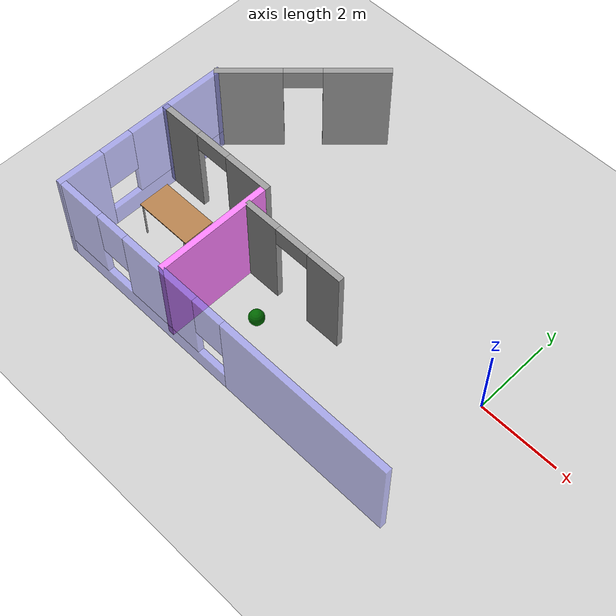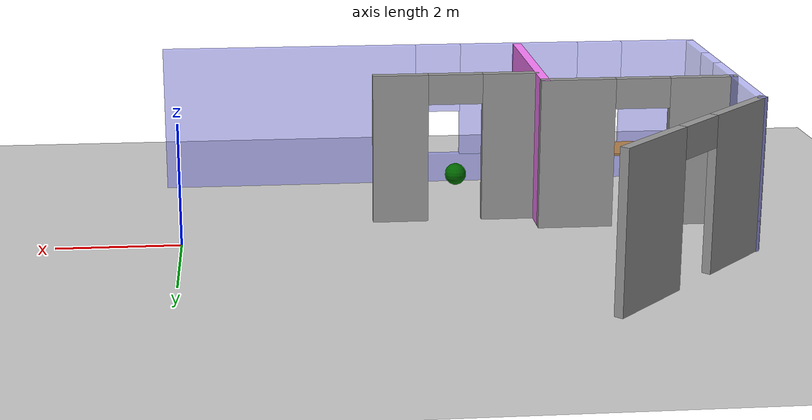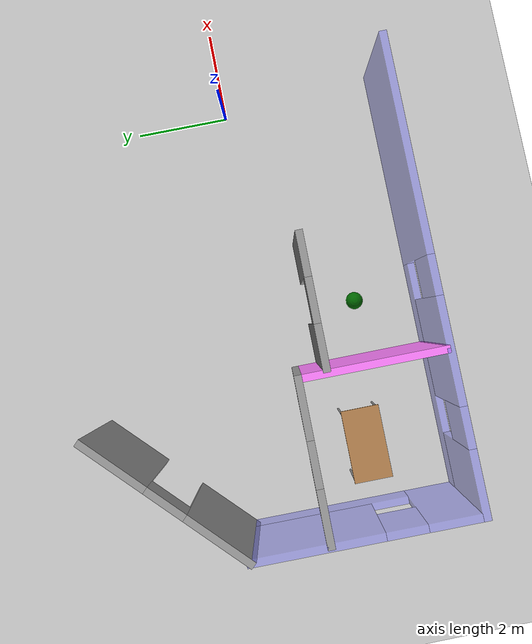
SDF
<sdf version="1.6">
 <world name="default">
  <model name="ground_plane">
   <static>1</static>
   <link name="link">
    <collision name="collision">
     <geometry><plane><normal>0 0 1</normal><size>100 100</size></plane></geometry>
     <surface>
      <contact><collide_bitmask>65535</collide_bitmask></contact>
      <friction><ode><mu>100</mu><mu2>50</mu2></ode></friction>
     </surface>
    </collision>
    <visual name="visual">
     <cast_shadows>0</cast_shadows>
     <geometry><plane><normal>0 0 1</normal><size>100 100</size></plane></geometry>
     <material>
      <script><uri>file://media/materials/scripts/gazebo.material</uri><name>Gazebo/Grey</name></script>
     </material>
    </visual>
   </link>
  </model>
  <model name="table_2">
   <static>1</static>
   <link name="link">
    <collision name="surface">
     <pose>0 0 1 0 -0 0</pose>
     <geometry><box><size>1.5 0.8 0.03</size></box></geometry>
     <surface><friction><ode><mu>0.6</mu><mu2>0.6</mu2></ode></friction></surface>
    </collision>
    <visual name="visual1">
     <pose>0 0 1 0 -0 0</pose>
     <geometry><box><size>1.5 0.8 0.03</size></box></geometry>
     <material>
      <script><uri>file://media/materials/scripts/gazebo.material</uri><name>Gazebo/Wood</name></script>
     </material>
    </visual>
    <collision name="front_left_leg">
     <pose>0.68 0.38 0.5 0 -0 0</pose>
     <geometry><cylinder><radius>0.02</radius><length>1</length></cylinder></geometry>
    </collision>
    <visual name="front_left_leg">
     <pose>0.68 0.38 0.5 0 -0 0</pose>
     <geometry><cylinder><radius>0.02</radius><length>1</length></cylinder></geometry>
     <material>
      <script><uri>file://media/materials/scripts/gazebo.material</uri><name>Gazebo/Grey</name></script>
     </material>
    </visual>
    <collision name="front_right_leg">
     <pose>0.68 -0.38 0.5 0 -0 0</pose>
     <geometry><cylinder><radius>0.02</radius><length>1</length></cylinder></geometry>
    </collision>
    <visual name="front_right_leg">
     <pose>0.68 -0.38 0.5 0 -0 0</pose>
     <geometry><cylinder><radius>0.02</radius><length>1</length></cylinder></geometry>
     <material>
      <script><uri>file://media/materials/scripts/gazebo.material</uri><name>Gazebo/Grey</name></script>
     </material>
    </visual>
    <collision name="back_right_leg">
     <pose>-0.68 -0.38 0.5 0 -0 0</pose>
     <geometry><cylinder><radius>0.02</radius><length>1</length></cylinder></geometry>
    </collision>
    <visual name="back_right_leg">
     <pose>-0.68 -0.38 0.5 0 -0 0</pose>
     <geometry><cylinder><radius>0.02</radius><length>1</length></cylinder></geometry>
     <material>
      <script><uri>file://media/materials/scripts/gazebo.material</uri><name>Gazebo/Grey</name></script>
     </material>
    </visual>
    <collision name="back_left_leg">
     <pose>-0.68 0.38 0.5 0 -0 0</pose>
     <geometry><cylinder><radius>0.02</radius><length>1</length></cylinder></geometry>
    </collision>
    <visual name="back_left_leg">
     <pose>-0.68 0.38 0.5 0 -0 0</pose>
     <geometry><cylinder><radius>0.02</radius><length>1</length></cylinder></geometry>
     <material>
      <script><uri>file://media/materials/scripts/gazebo.material</uri><name>Gazebo/Grey</name></script>
     </material>
    </visual>
   </link>
   <pose>-7.62979 -1.60292 0 0 -0 0</pose>
  </model>
  <model name="house">
   <link name="Wall_12">
    <pose>-4.46967 -2.80585 0 0 -0 3.14159</pose>
    <inertial>
     <mass>1</mass>
     <inertia><ixx>1</ixx><ixy>0</ixy><ixz>0</ixz><iyy>1</iyy><iyz>0</iyz><izz>1</izz></inertia>
    </inertial>
    <visual name="Wall_12_Visual_0">
     <pose>-2.52226 0 1.25 0 -0 0</pose>
     <geometry><box><size>4.45547 0.15 2.5</size></box></geometry>
     <material>
      <script><uri>file://media/materials/scripts/gazebo.material</uri><name>Gazebo/Grey</name></script>
      <ambient>0.5 0.5 1 0.5</ambient>
      <shader type="pixel"><normal_map>__default__</normal_map></shader>
      <diffuse>0.7 0.7 0.7 1</diffuse>
      <specular>0.01 0.01 0.01 1</specular>
      <emissive>0 0 0 1</emissive>
     </material>
     <meta><layer>0</layer></meta>
    </visual>
    <visual name="Wall_12_Visual_1">
     <pose>2.22774 0 0.25 0 -0 0</pose>
     <geometry><box><size>5.04453 0.15 0.5</size></box></geometry>
     <material>
      <script><uri>file://media/materials/scripts/gazebo.material</uri><name>Gazebo/Grey</name></script>
      <ambient>0.5 0.5 1 0.5</ambient>
      <shader type="pixel"><normal_map>__default__</normal_map></shader>
      <diffuse>0.7 0.7 0.7 1</diffuse>
      <specular>0.01 0.01 0.01 1</specular>
      <emissive>0 0 0 1</emissive>
     </material>
     <meta><layer>0</layer></meta>
    </visual>
    <visual name="Wall_12_Visual_5">
     <pose>3.01993 0 1.9 0 -0 0</pose>
     <geometry><box><size>0.8 0.15 1.2</size></box></geometry>
     <material>
      <script><uri>file://media/materials/scripts/gazebo.material</uri><name>Gazebo/Grey</name></script>
      <ambient>0.5 0.5 1 0.5</ambient>
      <shader type="pixel"><normal_map>__default__</normal_map></shader>
      <diffuse>0.7 0.7 0.7 1</diffuse>
      <specular>0.01 0.01 0.01 1</specular>
      <emissive>0 0 0 1</emissive>
     </material>
     <meta><layer>0</layer></meta>
    </visual>
    <visual name="Wall_12_Visual_2">
     <pose>1.5627 0 1.5 0 -0 0</pose>
     <geometry><box><size>2.11446 0.15 2</size></box></geometry>
     <material>
      <script><uri>file://media/materials/scripts/gazebo.material</uri><name>Gazebo/Grey</name></script>
      <ambient>0.5 0.5 1 0.5</ambient>
      <shader type="pixel"><normal_map>__default__</normal_map></shader>
      <diffuse>0.7 0.7 0.7 1</diffuse>
      <specular>0.01 0.01 0.01 1</specular>
      <emissive>0 0 0 1</emissive>
     </material>
     <meta><layer>0</layer></meta>
    </visual>
    <visual name="Wall_12_Visual_3">
     <pose>4.08496 0 1.5 0 -0 0</pose>
     <geometry><box><size>1.33007 0.15 2</size></box></geometry>
     <material>
      <script><uri>file://media/materials/scripts/gazebo.material</uri><name>Gazebo/Grey</name></script>
      <ambient>0.5 0.5 1 0.5</ambient>
      <shader type="pixel"><normal_map>__default__</normal_map></shader>
      <diffuse>0.7 0.7 0.7 1</diffuse>
      <specular>0.01 0.01 0.01 1</specular>
      <emissive>0 0 0 1</emissive>
     </material>
     <meta><layer>0</layer></meta>
    </visual>
    <visual name="Wall_12_Visual_4">
     <pose>0.10547 0 1.9 0 -0 0</pose>
     <geometry><box><size>0.8 0.15 1.2</size></box></geometry>
     <material>
      <script><uri>file://media/materials/scripts/gazebo.material</uri><name>Gazebo/Grey</name></script>
      <ambient>0.5 0.5 1 0.5</ambient>
      <shader type="pixel"><normal_map>__default__</normal_map></shader>
      <diffuse>0.7 0.7 0.7 1</diffuse>
      <specular>0.01 0.01 0.01 1</specular>
      <emissive>0 0 0 1</emissive>
     </material>
     <meta><layer>0</layer></meta>
    </visual>
    <collision name="Wall_12_Collision_0">
     <pose>-2.52226 0 1.25 0 -0 0</pose>
     <geometry><box><size>4.45547 0.15 2.5</size></box></geometry>
     <surface>
      <friction>
       <ode><mu>1</mu><mu2>1</mu2><fdir1>0 0 0</fdir1><slip1>0</slip1><slip2>0</slip2></ode>
       <torsional>
        <coefficient>1</coefficient>
        <patch_radius>0</patch_radius>
        <surface_radius>0</surface_radius>
        <use_patch_radius>1</use_patch_radius>
        <ode><slip>0</slip></ode>
       </torsional>
      </friction>
      <bounce><restitution_coefficient>0</restitution_coefficient><threshold>1e+06</threshold></bounce>
      <contact>
       <collide_without_contact>0</collide_without_contact>
       <collide_without_contact_bitmask>1</collide_without_contact_bitmask>
       <collide_bitmask>1</collide_bitmask>
       <ode>
        <soft_cfm>0</soft_cfm>
        <soft_erp>0.2</soft_erp>
        <kp>1e+13</kp>
        <kd>1</kd>
        <max_vel>0.01</max_vel>
        <min_depth>0</min_depth>
       </ode>
       <bullet>
        <split_impulse>1</split_impulse>
        <split_impulse_penetration_threshold>-0.01</split_impulse_penetration_threshold>
        <soft_cfm>0</soft_cfm>
        <soft_erp>0.2</soft_erp>
        <kp>1e+13</kp>
        <kd>1</kd>
       </bullet>
      </contact>
     </surface>
    </collision>
    <collision name="Wall_12_Collision_1">
     <pose>2.22774 0 0.25 0 -0 0</pose>
     <geometry><box><size>5.04453 0.15 0.5</size></box></geometry>
     <surface>
      <friction>
       <ode><mu>1</mu><mu2>1</mu2><fdir1>0 0 0</fdir1><slip1>0</slip1><slip2>0</slip2></ode>
       <torsional>
        <coefficient>1</coefficient>
        <patch_radius>0</patch_radius>
        <surface_radius>0</surface_radius>
        <use_patch_radius>1</use_patch_radius>
        <ode><slip>0</slip></ode>
       </torsional>
      </friction>
      <bounce><restitution_coefficient>0</restitution_coefficient><threshold>1e+06</threshold></bounce>
      <contact>
       <collide_without_contact>0</collide_without_contact>
       <collide_without_contact_bitmask>1</collide_without_contact_bitmask>
       <collide_bitmask>1</collide_bitmask>
       <ode>
        <soft_cfm>0</soft_cfm>
        <soft_erp>0.2</soft_erp>
        <kp>1e+13</kp>
        <kd>1</kd>
        <max_vel>0.01</max_vel>
        <min_depth>0</min_depth>
       </ode>
       <bullet>
        <split_impulse>1</split_impulse>
        <split_impulse_penetration_threshold>-0.01</split_impulse_penetration_threshold>
        <soft_cfm>0</soft_cfm>
        <soft_erp>0.2</soft_erp>
        <kp>1e+13</kp>
        <kd>1</kd>
       </bullet>
      </contact>
     </surface>
    </collision>
    <collision name="Wall_12_Collision_5">
     <pose>3.01993 0 1.9 0 -0 0</pose>
     <geometry><box><size>0.8 0.15 1.2</size></box></geometry>
     <surface>
      <friction>
       <ode><mu>1</mu><mu2>1</mu2><fdir1>0 0 0</fdir1><slip1>0</slip1><slip2>0</slip2></ode>
       <torsional>
        <coefficient>1</coefficient>
        <patch_radius>0</patch_radius>
        <surface_radius>0</surface_radius>
        <use_patch_radius>1</use_patch_radius>
        <ode><slip>0</slip></ode>
       </torsional>
      </friction>
      <bounce><restitution_coefficient>0</restitution_coefficient><threshold>1e+06</threshold></bounce>
      <contact>
       <collide_without_contact>0</collide_without_contact>
       <collide_without_contact_bitmask>1</collide_without_contact_bitmask>
       <collide_bitmask>1</collide_bitmask>
       <ode>
        <soft_cfm>0</soft_cfm>
        <soft_erp>0.2</soft_erp>
        <kp>1e+13</kp>
        <kd>1</kd>
        <max_vel>0.01</max_vel>
        <min_depth>0</min_depth>
       </ode>
       <bullet>
        <split_impulse>1</split_impulse>
        <split_impulse_penetration_threshold>-0.01</split_impulse_penetration_threshold>
        <soft_cfm>0</soft_cfm>
        <soft_erp>0.2</soft_erp>
        <kp>1e+13</kp>
        <kd>1</kd>
       </bullet>
      </contact>
     </surface>
    </collision>
    <collision name="Wall_12_Collision_2">
     <pose>1.5627 0 1.5 0 -0 0</pose>
     <geometry><box><size>2.11446 0.15 2</size></box></geometry>
     <surface>
      <friction>
       <ode><mu>1</mu><mu2>1</mu2><fdir1>0 0 0</fdir1><slip1>0</slip1><slip2>0</slip2></ode>
       <torsional>
        <coefficient>1</coefficient>
        <patch_radius>0</patch_radius>
        <surface_radius>0</surface_radius>
        <use_patch_radius>1</use_patch_radius>
        <ode><slip>0</slip></ode>
       </torsional>
      </friction>
      <bounce><restitution_coefficient>0</restitution_coefficient><threshold>1e+06</threshold></bounce>
      <contact>
       <collide_without_contact>0</collide_without_contact>
       <collide_without_contact_bitmask>1</collide_without_contact_bitmask>
       <collide_bitmask>1</collide_bitmask>
       <ode>
        <soft_cfm>0</soft_cfm>
        <soft_erp>0.2</soft_erp>
        <kp>1e+13</kp>
        <kd>1</kd>
        <max_vel>0.01</max_vel>
        <min_depth>0</min_depth>
       </ode>
       <bullet>
        <split_impulse>1</split_impulse>
        <split_impulse_penetration_threshold>-0.01</split_impulse_penetration_threshold>
        <soft_cfm>0</soft_cfm>
        <soft_erp>0.2</soft_erp>
        <kp>1e+13</kp>
        <kd>1</kd>
       </bullet>
      </contact>
     </surface>
    </collision>
    <collision name="Wall_12_Collision_3">
     <pose>4.08496 0 1.5 0 -0 0</pose>
     <geometry><box><size>1.33007 0.15 2</size></box></geometry>
     <surface>
      <friction>
       <ode><mu>1</mu><mu2>1</mu2><fdir1>0 0 0</fdir1><slip1>0</slip1><slip2>0</slip2></ode>
       <torsional>
        <coefficient>1</coefficient>
        <patch_radius>0</patch_radius>
        <surface_radius>0</surface_radius>
        <use_patch_radius>1</use_patch_radius>
        <ode><slip>0</slip></ode>
       </torsional>
      </friction>
      <bounce><restitution_coefficient>0</restitution_coefficient><threshold>1e+06</threshold></bounce>
      <contact>
       <collide_without_contact>0</collide_without_contact>
       <collide_without_contact_bitmask>1</collide_without_contact_bitmask>
       <collide_bitmask>1</collide_bitmask>
       <ode>
        <soft_cfm>0</soft_cfm>
        <soft_erp>0.2</soft_erp>
        <kp>1e+13</kp>
        <kd>1</kd>
        <max_vel>0.01</max_vel>
        <min_depth>0</min_depth>
       </ode>
       <bullet>
        <split_impulse>1</split_impulse>
        <split_impulse_penetration_threshold>-0.01</split_impulse_penetration_threshold>
        <soft_cfm>0</soft_cfm>
        <soft_erp>0.2</soft_erp>
        <kp>1e+13</kp>
        <kd>1</kd>
       </bullet>
      </contact>
     </surface>
    </collision>
    <collision name="Wall_12_Collision_4">
     <pose>0.10547 0 1.9 0 -0 0</pose>
     <geometry><box><size>0.8 0.15 1.2</size></box></geometry>
     <surface>
      <friction>
       <ode><mu>1</mu><mu2>1</mu2><fdir1>0 0 0</fdir1><slip1>0</slip1><slip2>0</slip2></ode>
       <torsional>
        <coefficient>1</coefficient>
        <patch_radius>0</patch_radius>
        <surface_radius>0</surface_radius>
        <use_patch_radius>1</use_patch_radius>
        <ode><slip>0</slip></ode>
       </torsional>
      </friction>
      <bounce><restitution_coefficient>0</restitution_coefficient><threshold>1e+06</threshold></bounce>
      <contact>
       <collide_without_contact>0</collide_without_contact>
       <collide_without_contact_bitmask>1</collide_without_contact_bitmask>
       <collide_bitmask>1</collide_bitmask>
       <ode>
        <soft_cfm>0</soft_cfm>
        <soft_erp>0.2</soft_erp>
        <kp>1e+13</kp>
        <kd>1</kd>
        <max_vel>0.01</max_vel>
        <min_depth>0</min_depth>
       </ode>
       <bullet>
        <split_impulse>1</split_impulse>
        <split_impulse_penetration_threshold>-0.01</split_impulse_penetration_threshold>
        <soft_cfm>0</soft_cfm>
        <soft_erp>0.2</soft_erp>
        <kp>1e+13</kp>
        <kd>1</kd>
       </bullet>
      </contact>
     </surface>
    </collision>
   </link>
   <link name="Wall_13">
    <pose>-9.13266 -0.586181 0 0 -0 1.56539</pose>
    <inertial>
     <mass>1</mass>
     <inertia><ixx>1</ixx><ixy>0</ixy><ixz>0</ixz><iyy>1</iyy><iyz>0</iyz><izz>1</izz></inertia>
    </inertial>
    <visual name="Wall_13_Visual_0">
     <pose>-1.70872 0 1.25 0 -0 0</pose>
     <geometry><box><size>1.17197 0.15 2.5</size></box></geometry>
     <material>
      <script><uri>file://media/materials/scripts/gazebo.material</uri><name>Gazebo/Grey</name></script>
      <ambient>0.5 0.5 1 0.5</ambient>
      <shader type="pixel"><normal_map>__default__</normal_map></shader>
      <diffuse>0.7 0.7 0.7 1</diffuse>
      <specular>0.01 0.01 0.01 1</specular>
      <emissive>0 0 0 1</emissive>
     </material>
     <meta><layer>0</layer></meta>
    </visual>
    <visual name="Wall_13_Visual_1">
     <pose>0.585986 0 0.25 0 -0 0</pose>
     <geometry><box><size>3.41743 0.15 0.5</size></box></geometry>
     <material>
      <script><uri>file://media/materials/scripts/gazebo.material</uri><name>Gazebo/Grey</name></script>
      <ambient>0.5 0.5 1 0.5</ambient>
      <shader type="pixel"><normal_map>__default__</normal_map></shader>
      <diffuse>0.7 0.7 0.7 1</diffuse>
      <specular>0.01 0.01 0.01 1</specular>
      <emissive>0 0 0 1</emissive>
     </material>
     <meta><layer>0</layer></meta>
    </visual>
    <visual name="Wall_13_Visual_2">
     <pose>0.985986 0 1.5 0 -0 0</pose>
     <geometry><box><size>2.61743 0.15 2</size></box></geometry>
     <material>
      <script><uri>file://media/materials/scripts/gazebo.material</uri><name>Gazebo/Grey</name></script>
      <ambient>0.5 0.5 1 0.5</ambient>
      <shader type="pixel"><normal_map>__default__</normal_map></shader>
      <diffuse>0.7 0.7 0.7 1</diffuse>
      <specular>0.01 0.01 0.01 1</specular>
      <emissive>0 0 0 1</emissive>
     </material>
     <meta><layer>0</layer></meta>
    </visual>
    <visual name="Wall_13_Visual_3">
     <pose>-0.722731 0 1.9 0 -0 0</pose>
     <geometry><box><size>0.8 0.15 1.2</size></box></geometry>
     <material>
      <script><uri>file://media/materials/scripts/gazebo.material</uri><name>Gazebo/Grey</name></script>
      <ambient>0.5 0.5 1 0.5</ambient>
      <shader type="pixel"><normal_map>__default__</normal_map></shader>
      <diffuse>0.7 0.7 0.7 1</diffuse>
      <specular>0.01 0.01 0.01 1</specular>
      <emissive>0 0 0 1</emissive>
     </material>
     <meta><layer>0</layer></meta>
    </visual>
    <collision name="Wall_13_Collision_0">
     <pose>-1.70872 0 1.25 0 -0 0</pose>
     <geometry><box><size>1.17197 0.15 2.5</size></box></geometry>
     <surface>
      <friction>
       <ode><mu>1</mu><mu2>1</mu2><fdir1>0 0 0</fdir1><slip1>0</slip1><slip2>0</slip2></ode>
       <torsional>
        <coefficient>1</coefficient>
        <patch_radius>0</patch_radius>
        <surface_radius>0</surface_radius>
        <use_patch_radius>1</use_patch_radius>
        <ode><slip>0</slip></ode>
       </torsional>
      </friction>
      <bounce><restitution_coefficient>0</restitution_coefficient><threshold>1e+06</threshold></bounce>
      <contact>
       <collide_without_contact>0</collide_without_contact>
       <collide_without_contact_bitmask>1</collide_without_contact_bitmask>
       <collide_bitmask>1</collide_bitmask>
       <ode>
        <soft_cfm>0</soft_cfm>
        <soft_erp>0.2</soft_erp>
        <kp>1e+13</kp>
        <kd>1</kd>
        <max_vel>0.01</max_vel>
        <min_depth>0</min_depth>
       </ode>
       <bullet>
        <split_impulse>1</split_impulse>
        <split_impulse_penetration_threshold>-0.01</split_impulse_penetration_threshold>
        <soft_cfm>0</soft_cfm>
        <soft_erp>0.2</soft_erp>
        <kp>1e+13</kp>
        <kd>1</kd>
       </bullet>
      </contact>
     </surface>
    </collision>
    <collision name="Wall_13_Collision_1">
     <pose>0.585986 0 0.25 0 -0 0</pose>
     <geometry><box><size>3.41743 0.15 0.5</size></box></geometry>
     <surface>
      <friction>
       <ode><mu>1</mu><mu2>1</mu2><fdir1>0 0 0</fdir1><slip1>0</slip1><slip2>0</slip2></ode>
       <torsional>
        <coefficient>1</coefficient>
        <patch_radius>0</patch_radius>
        <surface_radius>0</surface_radius>
        <use_patch_radius>1</use_patch_radius>
        <ode><slip>0</slip></ode>
       </torsional>
      </friction>
      <bounce><restitution_coefficient>0</restitution_coefficient><threshold>1e+06</threshold></bounce>
      <contact>
       <collide_without_contact>0</collide_without_contact>
       <collide_without_contact_bitmask>1</collide_without_contact_bitmask>
       <collide_bitmask>1</collide_bitmask>
       <ode>
        <soft_cfm>0</soft_cfm>
        <soft_erp>0.2</soft_erp>
        <kp>1e+13</kp>
        <kd>1</kd>
        <max_vel>0.01</max_vel>
        <min_depth>0</min_depth>
       </ode>
       <bullet>
        <split_impulse>1</split_impulse>
        <split_impulse_penetration_threshold>-0.01</split_impulse_penetration_threshold>
        <soft_cfm>0</soft_cfm>
        <soft_erp>0.2</soft_erp>
        <kp>1e+13</kp>
        <kd>1</kd>
       </bullet>
      </contact>
     </surface>
    </collision>
    <collision name="Wall_13_Collision_3">
     <pose>-0.722731 0 1.9 0 -0 0</pose>
     <geometry><box><size>0.8 0.15 1.2</size></box></geometry>
     <surface>
      <friction>
       <ode><mu>1</mu><mu2>1</mu2><fdir1>0 0 0</fdir1><slip1>0</slip1><slip2>0</slip2></ode>
       <torsional>
        <coefficient>1</coefficient>
        <patch_radius>0</patch_radius>
        <surface_radius>0</surface_radius>
        <use_patch_radius>1</use_patch_radius>
        <ode><slip>0</slip></ode>
       </torsional>
      </friction>
      <bounce><restitution_coefficient>0</restitution_coefficient><threshold>1e+06</threshold></bounce>
      <contact>
       <collide_without_contact>0</collide_without_contact>
       <collide_without_contact_bitmask>1</collide_without_contact_bitmask>
       <collide_bitmask>1</collide_bitmask>
       <ode>
        <soft_cfm>0</soft_cfm>
        <soft_erp>0.2</soft_erp>
        <kp>1e+13</kp>
        <kd>1</kd>
        <max_vel>0.01</max_vel>
        <min_depth>0</min_depth>
       </ode>
       <bullet>
        <split_impulse>1</split_impulse>
        <split_impulse_penetration_threshold>-0.01</split_impulse_penetration_threshold>
        <soft_cfm>0</soft_cfm>
        <soft_erp>0.2</soft_erp>
        <kp>1e+13</kp>
        <kd>1</kd>
       </bullet>
      </contact>
     </surface>
    </collision>
    <collision name="Wall_13_Collision_2">
     <pose>0.985986 0 1.5 0 -0 0</pose>
     <geometry><box><size>2.61743 0.15 2</size></box></geometry>
     <surface>
      <friction>
       <ode><mu>1</mu><mu2>1</mu2><fdir1>0 0 0</fdir1><slip1>0</slip1><slip2>0</slip2></ode>
       <torsional>
        <coefficient>1</coefficient>
        <patch_radius>0</patch_radius>
        <surface_radius>0</surface_radius>
        <use_patch_radius>1</use_patch_radius>
        <ode><slip>0</slip></ode>
       </torsional>
      </friction>
      <bounce><restitution_coefficient>0</restitution_coefficient><threshold>1e+06</threshold></bounce>
      <contact>
       <collide_without_contact>0</collide_without_contact>
       <collide_without_contact_bitmask>1</collide_without_contact_bitmask>
       <collide_bitmask>1</collide_bitmask>
       <ode>
        <soft_cfm>0</soft_cfm>
        <soft_erp>0.2</soft_erp>
        <kp>1e+13</kp>
        <kd>1</kd>
        <max_vel>0.01</max_vel>
        <min_depth>0</min_depth>
       </ode>
       <bullet>
        <split_impulse>1</split_impulse>
        <split_impulse_penetration_threshold>-0.01</split_impulse_penetration_threshold>
        <soft_cfm>0</soft_cfm>
        <soft_erp>0.2</soft_erp>
        <kp>1e+13</kp>
        <kd>1</kd>
       </bullet>
      </contact>
     </surface>
    </collision>
   </link>
   <link name="Wall_15">
    <pose>-7.54673 0.125343 0 0 -0 0</pose>
    <inertial>
     <mass>1</mass>
     <inertia><ixx>1</ixx><ixy>0</ixy><ixz>0</ixz><iyy>1</iyy><iyz>0</iyz><izz>1</izz></inertia>
    </inertial>
    <visual name="Wall_15_Visual_0">
     <pose>-1.06675 0 1.25 0 -0 0</pose>
     <geometry><box><size>1.11649 0.15 2.5</size></box></geometry>
     <material>
      <script><uri>file://media/materials/scripts/gazebo.material</uri><name>Gazebo/Grey</name></script>
      <ambient>0.5 0.5 0.5 0.5</ambient>
      <shader type="pixel"><normal_map>__default__</normal_map></shader>
      <diffuse>0.7 0.7 0.7 1</diffuse>
      <specular>0.01 0.01 0.01 1</specular>
      <emissive>0 0 0 1</emissive>
     </material>
     <meta><layer>0</layer></meta>
    </visual>
    <visual name="Wall_15_Visual_1">
     <pose>1.00825 0 1.25 0 -0 0</pose>
     <geometry><box><size>1.23351 0.15 2.5</size></box></geometry>
     <material>
      <script><uri>file://media/materials/scripts/gazebo.material</uri><name>Gazebo/Grey</name></script>
      <ambient>0.5 0.5 0.5 0.5</ambient>
      <shader type="pixel"><normal_map>__default__</normal_map></shader>
      <diffuse>0.7 0.7 0.7 1</diffuse>
      <specular>0.01 0.01 0.01 1</specular>
      <emissive>0 0 0 1</emissive>
     </material>
     <meta><layer>0</layer></meta>
    </visual>
    <visual name="Wall_15_Visual_2">
     <pose>-0.058511 0 2.25 0 -0 0</pose>
     <geometry><box><size>0.9 0.15 0.5</size></box></geometry>
     <material>
      <script><uri>file://media/materials/scripts/gazebo.material</uri><name>Gazebo/Grey</name></script>
      <ambient>0.5 0.5 0.5 0.5</ambient>
      <shader type="pixel"><normal_map>__default__</normal_map></shader>
      <diffuse>0.7 0.7 0.7 1</diffuse>
      <specular>0.01 0.01 0.01 1</specular>
      <emissive>0 0 0 1</emissive>
     </material>
     <meta><layer>0</layer></meta>
    </visual>
    <collision name="Wall_15_Collision_0">
     <pose>-1.06675 0 1.25 0 -0 0</pose>
     <geometry><box><size>1.11649 0.15 2.5</size></box></geometry>
     <surface>
      <friction>
       <ode><mu>1</mu><mu2>1</mu2><fdir1>0 0 0</fdir1><slip1>0</slip1><slip2>0</slip2></ode>
       <torsional>
        <coefficient>1</coefficient>
        <patch_radius>0</patch_radius>
        <surface_radius>0</surface_radius>
        <use_patch_radius>1</use_patch_radius>
        <ode><slip>0</slip></ode>
       </torsional>
      </friction>
      <bounce><restitution_coefficient>0</restitution_coefficient><threshold>1e+06</threshold></bounce>
      <contact>
       <collide_without_contact>0</collide_without_contact>
       <collide_without_contact_bitmask>1</collide_without_contact_bitmask>
       <collide_bitmask>1</collide_bitmask>
       <ode>
        <soft_cfm>0</soft_cfm>
        <soft_erp>0.2</soft_erp>
        <kp>1e+13</kp>
        <kd>1</kd>
        <max_vel>0.01</max_vel>
        <min_depth>0</min_depth>
       </ode>
       <bullet>
        <split_impulse>1</split_impulse>
        <split_impulse_penetration_threshold>-0.01</split_impulse_penetration_threshold>
        <soft_cfm>0</soft_cfm>
        <soft_erp>0.2</soft_erp>
        <kp>1e+13</kp>
        <kd>1</kd>
       </bullet>
      </contact>
     </surface>
    </collision>
    <collision name="Wall_15_Collision_1">
     <pose>1.00825 0 1.25 0 -0 0</pose>
     <geometry><box><size>1.23351 0.15 2.5</size></box></geometry>
     <surface>
      <friction>
       <ode><mu>1</mu><mu2>1</mu2><fdir1>0 0 0</fdir1><slip1>0</slip1><slip2>0</slip2></ode>
       <torsional>
        <coefficient>1</coefficient>
        <patch_radius>0</patch_radius>
        <surface_radius>0</surface_radius>
        <use_patch_radius>1</use_patch_radius>
        <ode><slip>0</slip></ode>
       </torsional>
      </friction>
      <bounce><restitution_coefficient>0</restitution_coefficient><threshold>1e+06</threshold></bounce>
      <contact>
       <collide_without_contact>0</collide_without_contact>
       <collide_without_contact_bitmask>1</collide_without_contact_bitmask>
       <collide_bitmask>1</collide_bitmask>
       <ode>
        <soft_cfm>0</soft_cfm>
        <soft_erp>0.2</soft_erp>
        <kp>1e+13</kp>
        <kd>1</kd>
        <max_vel>0.01</max_vel>
        <min_depth>0</min_depth>
       </ode>
       <bullet>
        <split_impulse>1</split_impulse>
        <split_impulse_penetration_threshold>-0.01</split_impulse_penetration_threshold>
        <soft_cfm>0</soft_cfm>
        <soft_erp>0.2</soft_erp>
        <kp>1e+13</kp>
        <kd>1</kd>
       </bullet>
      </contact>
     </surface>
    </collision>
    <collision name="Wall_15_Collision_2">
     <pose>-0.058511 0 2.25 0 -0 0</pose>
     <geometry><box><size>0.9 0.15 0.5</size></box></geometry>
     <surface>
      <friction>
       <ode><mu>1</mu><mu2>1</mu2><fdir1>0 0 0</fdir1><slip1>0</slip1><slip2>0</slip2></ode>
       <torsional>
        <coefficient>1</coefficient>
        <patch_radius>0</patch_radius>
        <surface_radius>0</surface_radius>
        <use_patch_radius>1</use_patch_radius>
        <ode><slip>0</slip></ode>
       </torsional>
      </friction>
      <bounce><restitution_coefficient>0</restitution_coefficient><threshold>1e+06</threshold></bounce>
      <contact>
       <collide_without_contact>0</collide_without_contact>
       <collide_without_contact_bitmask>1</collide_without_contact_bitmask>
       <collide_bitmask>1</collide_bitmask>
       <ode>
        <soft_cfm>0</soft_cfm>
        <soft_erp>0.2</soft_erp>
        <kp>1e+13</kp>
        <kd>1</kd>
        <max_vel>0.01</max_vel>
        <min_depth>0</min_depth>
       </ode>
       <bullet>
        <split_impulse>1</split_impulse>
        <split_impulse_penetration_threshold>-0.01</split_impulse_penetration_threshold>
        <soft_cfm>0</soft_cfm>
        <soft_erp>0.2</soft_erp>
        <kp>1e+13</kp>
        <kd>1</kd>
       </bullet>
      </contact>
     </surface>
    </collision>
   </link>
   <link name="Wall_16">
    <pose>-5.99674 -1.29966 0 0 0 -1.5708</pose>
    <inertial>
     <mass>1</mass>
     <inertia><ixx>1</ixx><ixy>0</ixy><ixz>0</ixz><iyy>1</iyy><iyz>0</iyz><izz>1</izz></inertia>
    </inertial>
    <visual name="Wall_16_Visual">
     <pose>0 0 1.25 0 -0 0</pose>
     <geometry><box><size>3 0.15 2.5</size></box></geometry>
     <material>
      <script><uri>file://media/materials/scripts/gazebo.material</uri><name>Gazebo/Grey</name></script>
      <ambient>1 0.5 1 1</ambient>
      <shader type="pixel"><normal_map>__default__</normal_map></shader>
      <diffuse>0.7 0.7 0.7 1</diffuse>
      <specular>0.01 0.01 0.01 1</specular>
      <emissive>0 0 0 1</emissive>
     </material>
     <meta><layer>0</layer></meta>
    </visual>
    <collision name="Wall_16_Collision">
     <pose>0 0 1.25 0 -0 0</pose>
     <geometry><box><size>3 0.15 2.5</size></box></geometry>
     <surface>
      <friction>
       <ode><mu>1</mu><mu2>1</mu2><fdir1>0 0 0</fdir1><slip1>0</slip1><slip2>0</slip2></ode>
       <torsional>
        <coefficient>1</coefficient>
        <patch_radius>0</patch_radius>
        <surface_radius>0</surface_radius>
        <use_patch_radius>1</use_patch_radius>
        <ode><slip>0</slip></ode>
       </torsional>
      </friction>
      <bounce><restitution_coefficient>0</restitution_coefficient><threshold>1e+06</threshold></bounce>
      <contact>
       <collide_without_contact>0</collide_without_contact>
       <collide_without_contact_bitmask>1</collide_without_contact_bitmask>
       <collide_bitmask>1</collide_bitmask>
       <ode>
        <soft_cfm>0</soft_cfm>
        <soft_erp>0.2</soft_erp>
        <kp>1e+13</kp>
        <kd>1</kd>
        <max_vel>0.01</max_vel>
        <min_depth>0</min_depth>
       </ode>
       <bullet>
        <split_impulse>1</split_impulse>
        <split_impulse_penetration_threshold>-0.01</split_impulse_penetration_threshold>
        <soft_cfm>0</soft_cfm>
        <soft_erp>0.2</soft_erp>
        <kp>1e+13</kp>
        <kd>1</kd>
       </bullet>
      </contact>
     </surface>
    </collision>
   </link>
   <link name="Wall_18">
    <pose>-4.60471 -0.433261 0 0 -0 0</pose>
    <inertial>
     <mass>1</mass>
     <inertia><ixx>1</ixx><ixy>0</ixy><ixz>0</ixz><iyy>1</iyy><iyz>0</iyz><izz>1</izz></inertia>
    </inertial>
    <visual name="Wall_18_Visual_0">
     <pose>-0.909278 0 1.25 0 -0 0</pose>
     <geometry><box><size>0.931444 0.15 2.5</size></box></geometry>
     <material>
      <script><uri>file://media/materials/scripts/gazebo.material</uri><name>Gazebo/Grey</name></script>
      <ambient>0.5 0.5 0.5 0.5</ambient>
      <shader type="pixel"><normal_map>__default__</normal_map></shader>
      <diffuse>0.7 0.7 0.7 1</diffuse>
      <specular>0.01 0.01 0.01 1</specular>
      <emissive>0 0 0 1</emissive>
     </material>
     <meta><layer>0</layer></meta>
    </visual>
    <visual name="Wall_18_Visual_1">
     <pose>0.915722 0 1.25 0 -0 0</pose>
     <geometry><box><size>0.918556 0.15 2.5</size></box></geometry>
     <material>
      <script><uri>file://media/materials/scripts/gazebo.material</uri><name>Gazebo/Grey</name></script>
      <ambient>0.5 0.5 0.5 0.5</ambient>
      <shader type="pixel"><normal_map>__default__</normal_map></shader>
      <diffuse>0.7 0.7 0.7 1</diffuse>
      <specular>0.01 0.01 0.01 1</specular>
      <emissive>0 0 0 1</emissive>
     </material>
     <meta><layer>0</layer></meta>
    </visual>
    <visual name="Wall_18_Visual_2">
     <pose>0.006444 0 2.25 0 -0 0</pose>
     <geometry><box><size>0.9 0.15 0.5</size></box></geometry>
     <material>
      <script><uri>file://media/materials/scripts/gazebo.material</uri><name>Gazebo/Grey</name></script>
      <ambient>0.5 0.5 0.5 0.5</ambient>
      <shader type="pixel"><normal_map>__default__</normal_map></shader>
      <diffuse>0.7 0.7 0.7 1</diffuse>
      <specular>0.01 0.01 0.01 1</specular>
      <emissive>0 0 0 1</emissive>
     </material>
     <meta><layer>0</layer></meta>
    </visual>
    <collision name="Wall_18_Collision_0">
     <pose>-0.909278 0 1.25 0 -0 0</pose>
     <geometry><box><size>0.931444 0.15 2.5</size></box></geometry>
     <surface>
      <friction>
       <ode><mu>1</mu><mu2>1</mu2><fdir1>0 0 0</fdir1><slip1>0</slip1><slip2>0</slip2></ode>
       <torsional>
        <coefficient>1</coefficient>
        <patch_radius>0</patch_radius>
        <surface_radius>0</surface_radius>
        <use_patch_radius>1</use_patch_radius>
        <ode><slip>0</slip></ode>
       </torsional>
      </friction>
      <bounce><restitution_coefficient>0</restitution_coefficient><threshold>1e+06</threshold></bounce>
      <contact>
       <collide_without_contact>0</collide_without_contact>
       <collide_without_contact_bitmask>1</collide_without_contact_bitmask>
       <collide_bitmask>1</collide_bitmask>
       <ode>
        <soft_cfm>0</soft_cfm>
        <soft_erp>0.2</soft_erp>
        <kp>1e+13</kp>
        <kd>1</kd>
        <max_vel>0.01</max_vel>
        <min_depth>0</min_depth>
       </ode>
       <bullet>
        <split_impulse>1</split_impulse>
        <split_impulse_penetration_threshold>-0.01</split_impulse_penetration_threshold>
        <soft_cfm>0</soft_cfm>
        <soft_erp>0.2</soft_erp>
        <kp>1e+13</kp>
        <kd>1</kd>
       </bullet>
      </contact>
     </surface>
    </collision>
    <collision name="Wall_18_Collision_1">
     <pose>0.915722 0 1.25 0 -0 0</pose>
     <geometry><box><size>0.918556 0.15 2.5</size></box></geometry>
     <surface>
      <friction>
       <ode><mu>1</mu><mu2>1</mu2><fdir1>0 0 0</fdir1><slip1>0</slip1><slip2>0</slip2></ode>
       <torsional>
        <coefficient>1</coefficient>
        <patch_radius>0</patch_radius>
        <surface_radius>0</surface_radius>
        <use_patch_radius>1</use_patch_radius>
        <ode><slip>0</slip></ode>
       </torsional>
      </friction>
      <bounce><restitution_coefficient>0</restitution_coefficient><threshold>1e+06</threshold></bounce>
      <contact>
       <collide_without_contact>0</collide_without_contact>
       <collide_without_contact_bitmask>1</collide_without_contact_bitmask>
       <collide_bitmask>1</collide_bitmask>
       <ode>
        <soft_cfm>0</soft_cfm>
        <soft_erp>0.2</soft_erp>
        <kp>1e+13</kp>
        <kd>1</kd>
        <max_vel>0.01</max_vel>
        <min_depth>0</min_depth>
       </ode>
       <bullet>
        <split_impulse>1</split_impulse>
        <split_impulse_penetration_threshold>-0.01</split_impulse_penetration_threshold>
        <soft_cfm>0</soft_cfm>
        <soft_erp>0.2</soft_erp>
        <kp>1e+13</kp>
        <kd>1</kd>
       </bullet>
      </contact>
     </surface>
    </collision>
    <collision name="Wall_18_Collision_2">
     <pose>0.006444 0 2.25 0 -0 0</pose>
     <geometry><box><size>0.9 0.15 0.5</size></box></geometry>
     <surface>
      <friction>
       <ode><mu>1</mu><mu2>1</mu2><fdir1>0 0 0</fdir1><slip1>0</slip1><slip2>0</slip2></ode>
       <torsional>
        <coefficient>1</coefficient>
        <patch_radius>0</patch_radius>
        <surface_radius>0</surface_radius>
        <use_patch_radius>1</use_patch_radius>
        <ode><slip>0</slip></ode>
       </torsional>
      </friction>
      <bounce><restitution_coefficient>0</restitution_coefficient><threshold>1e+06</threshold></bounce>
      <contact>
       <collide_without_contact>0</collide_without_contact>
       <collide_without_contact_bitmask>1</collide_without_contact_bitmask>
       <collide_bitmask>1</collide_bitmask>
       <ode>
        <soft_cfm>0</soft_cfm>
        <soft_erp>0.2</soft_erp>
        <kp>1e+13</kp>
        <kd>1</kd>
        <max_vel>0.01</max_vel>
        <min_depth>0</min_depth>
       </ode>
       <bullet>
        <split_impulse>1</split_impulse>
        <split_impulse_penetration_threshold>-0.01</split_impulse_penetration_threshold>
        <soft_cfm>0</soft_cfm>
        <soft_erp>0.2</soft_erp>
        <kp>1e+13</kp>
        <kd>1</kd>
       </bullet>
      </contact>
     </surface>
    </collision>
   </link>
   <link name="Wall_2">
    <pose>-7.75947 2.99467 0 0 -0 0.785398</pose>
    <inertial>
     <mass>1</mass>
     <inertia><ixx>1</ixx><ixy>0</ixy><ixz>0</ixz><iyy>1</iyy><iyz>0</iyz><izz>1</izz></inertia>
    </inertial>
    <visual name="Wall_2_Visual_0">
     <pose>-1.22818 0 1.25 0 -0 0</pose>
     <geometry><box><size>1.54364 0.15 2.5</size></box></geometry>
     <material>
      <script><uri>file://media/materials/scripts/gazebo.material</uri><name>Gazebo/Grey</name></script>
      <ambient>0.5 0.5 0.5 0.5</ambient>
      <shader type="pixel"><normal_map>__default__</normal_map></shader>
      <diffuse>0.7 0.7 0.7 1</diffuse>
      <specular>0.01 0.01 0.01 1</specular>
      <emissive>0 0 0 1</emissive>
     </material>
     <meta><layer>0</layer></meta>
    </visual>
    <visual name="Wall_2_Visual_1">
     <pose>1.22182 0 1.25 0 -0 0</pose>
     <geometry><box><size>1.55636 0.15 2.5</size></box></geometry>
     <material>
      <script><uri>file://media/materials/scripts/gazebo.material</uri><name>Gazebo/Grey</name></script>
      <ambient>0.5 0.5 0.5 0.5</ambient>
      <shader type="pixel"><normal_map>__default__</normal_map></shader>
      <diffuse>0.7 0.7 0.7 1</diffuse>
      <specular>0.01 0.01 0.01 1</specular>
      <emissive>0 0 0 1</emissive>
     </material>
     <meta><layer>0</layer></meta>
    </visual>
    <visual name="Wall_2_Visual_2">
     <pose>-0.006361 0 2.25 0 -0 0</pose>
     <geometry><box><size>0.9 0.15 0.5</size></box></geometry>
     <material>
      <script><uri>file://media/materials/scripts/gazebo.material</uri><name>Gazebo/Grey</name></script>
      <ambient>0.5 0.5 0.5 0.5</ambient>
      <shader type="pixel"><normal_map>__default__</normal_map></shader>
      <diffuse>0.7 0.7 0.7 1</diffuse>
      <specular>0.01 0.01 0.01 1</specular>
      <emissive>0 0 0 1</emissive>
     </material>
     <meta><layer>0</layer></meta>
    </visual>
    <collision name="Wall_2_Collision_0">
     <pose>-1.22818 0 1.25 0 -0 0</pose>
     <geometry><box><size>1.54364 0.15 2.5</size></box></geometry>
     <surface>
      <friction>
       <ode><mu>1</mu><mu2>1</mu2><fdir1>0 0 0</fdir1><slip1>0</slip1><slip2>0</slip2></ode>
       <torsional>
        <coefficient>1</coefficient>
        <patch_radius>0</patch_radius>
        <surface_radius>0</surface_radius>
        <use_patch_radius>1</use_patch_radius>
        <ode><slip>0</slip></ode>
       </torsional>
      </friction>
      <bounce><restitution_coefficient>0</restitution_coefficient><threshold>1e+06</threshold></bounce>
      <contact>
       <collide_without_contact>0</collide_without_contact>
       <collide_without_contact_bitmask>1</collide_without_contact_bitmask>
       <collide_bitmask>1</collide_bitmask>
       <ode>
        <soft_cfm>0</soft_cfm>
        <soft_erp>0.2</soft_erp>
        <kp>1e+13</kp>
        <kd>1</kd>
        <max_vel>0.01</max_vel>
        <min_depth>0</min_depth>
       </ode>
       <bullet>
        <split_impulse>1</split_impulse>
        <split_impulse_penetration_threshold>-0.01</split_impulse_penetration_threshold>
        <soft_cfm>0</soft_cfm>
        <soft_erp>0.2</soft_erp>
        <kp>1e+13</kp>
        <kd>1</kd>
       </bullet>
      </contact>
     </surface>
    </collision>
    <collision name="Wall_2_Collision_1">
     <pose>1.22182 0 1.25 0 -0 0</pose>
     <geometry><box><size>1.55636 0.15 2.5</size></box></geometry>
     <surface>
      <friction>
       <ode><mu>1</mu><mu2>1</mu2><fdir1>0 0 0</fdir1><slip1>0</slip1><slip2>0</slip2></ode>
       <torsional>
        <coefficient>1</coefficient>
        <patch_radius>0</patch_radius>
        <surface_radius>0</surface_radius>
        <use_patch_radius>1</use_patch_radius>
        <ode><slip>0</slip></ode>
       </torsional>
      </friction>
      <bounce><restitution_coefficient>0</restitution_coefficient><threshold>1e+06</threshold></bounce>
      <contact>
       <collide_without_contact>0</collide_without_contact>
       <collide_without_contact_bitmask>1</collide_without_contact_bitmask>
       <collide_bitmask>1</collide_bitmask>
       <ode>
        <soft_cfm>0</soft_cfm>
        <soft_erp>0.2</soft_erp>
        <kp>1e+13</kp>
        <kd>1</kd>
        <max_vel>0.01</max_vel>
        <min_depth>0</min_depth>
       </ode>
       <bullet>
        <split_impulse>1</split_impulse>
        <split_impulse_penetration_threshold>-0.01</split_impulse_penetration_threshold>
        <soft_cfm>0</soft_cfm>
        <soft_erp>0.2</soft_erp>
        <kp>1e+13</kp>
        <kd>1</kd>
       </bullet>
      </contact>
     </surface>
    </collision>
    <collision name="Wall_2_Collision_2">
     <pose>-0.006361 0 2.25 0 -0 0</pose>
     <geometry><box><size>0.9 0.15 0.5</size></box></geometry>
     <surface>
      <friction>
       <ode><mu>1</mu><mu2>1</mu2><fdir1>0 0 0</fdir1><slip1>0</slip1><slip2>0</slip2></ode>
       <torsional>
        <coefficient>1</coefficient>
        <patch_radius>0</patch_radius>
        <surface_radius>0</surface_radius>
        <use_patch_radius>1</use_patch_radius>
        <ode><slip>0</slip></ode>
       </torsional>
      </friction>
      <bounce><restitution_coefficient>0</restitution_coefficient><threshold>1e+06</threshold></bounce>
      <contact>
       <collide_without_contact>0</collide_without_contact>
       <collide_without_contact_bitmask>1</collide_without_contact_bitmask>
       <collide_bitmask>1</collide_bitmask>
       <ode>
        <soft_cfm>0</soft_cfm>
        <soft_erp>0.2</soft_erp>
        <kp>1e+13</kp>
        <kd>1</kd>
        <max_vel>0.01</max_vel>
        <min_depth>0</min_depth>
       </ode>
       <bullet>
        <split_impulse>1</split_impulse>
        <split_impulse_penetration_threshold>-0.01</split_impulse_penetration_threshold>
        <soft_cfm>0</soft_cfm>
        <soft_erp>0.2</soft_erp>
        <kp>1e+13</kp>
        <kd>1</kd>
       </bullet>
      </contact>
     </surface>
    </collision>
   </link>
   <static>1</static>
   <pose>0.07793 -0.58211 0 0 -0 0</pose>
  </model>
  <model name="unit_sphere">
   <link name="link">
    <pose>0.120658 -0.279152 0 0 -0 0</pose>
    <inertial>
     <mass>0.0505705</mass>
     <inertia>
      <ixx>0.00069156</ixx>
      <ixy>0</ixy>
      <ixz>0</ixz>
      <iyy>0.00069156</iyy>
      <iyz>0</iyz>
      <izz>0.00069156</izz>
     </inertia>
    </inertial>
    <visual name="visual">
     <geometry><sphere><radius>0.1849</radius></sphere></geometry>
     <material>
      <script><name>Gazebo/Grey</name><uri>file://media/materials/scripts/gazebo.material</uri></script>
      <shader type="pixel"><normal_map>__default__</normal_map></shader>
      <ambient>0 0.4 0 1</ambient>
      <diffuse>0.7 0.7 0.7 1</diffuse>
      <specular>0.01 0.01 0.01 1</specular>
      <emissive>0 0 0 1</emissive>
     </material>
    </visual>
    <collision name="collision">
     <geometry><sphere><radius>0.1849</radius></sphere></geometry>
     <surface>
      <friction>
       <ode><mu>1</mu><mu2>1</mu2><fdir1>0 0 0</fdir1><slip1>0</slip1><slip2>0</slip2></ode>
       <torsional>
        <coefficient>1</coefficient>
        <patch_radius>0</patch_radius>
        <surface_radius>0</surface_radius>
        <use_patch_radius>1</use_patch_radius>
        <ode><slip>0</slip></ode>
       </torsional>
      </friction>
      <bounce><restitution_coefficient>0</restitution_coefficient><threshold>1e+06</threshold></bounce>
      <contact>
       <collide_without_contact>0</collide_without_contact>
       <collide_without_contact_bitmask>1</collide_without_contact_bitmask>
       <collide_bitmask>1</collide_bitmask>
       <ode>
        <soft_cfm>0</soft_cfm>
        <soft_erp>0.2</soft_erp>
        <kp>1e+13</kp>
        <kd>1</kd>
        <max_vel>0.01</max_vel>
        <min_depth>0</min_depth>
       </ode>
       <bullet>
        <split_impulse>1</split_impulse>
        <split_impulse_penetration_threshold>-0.01</split_impulse_penetration_threshold>
        <soft_cfm>0</soft_cfm>
        <soft_erp>0.2</soft_erp>
        <kp>1e+13</kp>
        <kd>1</kd>
       </bullet>
      </contact>
     </surface>
    </collision>
   </link>
   <static>0</static>
   <pose>-4.78121 -1.72799 0.5 0 -0 0</pose>
  </model>
 </world>
</sdf>
